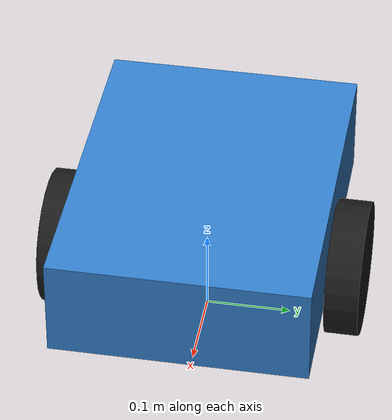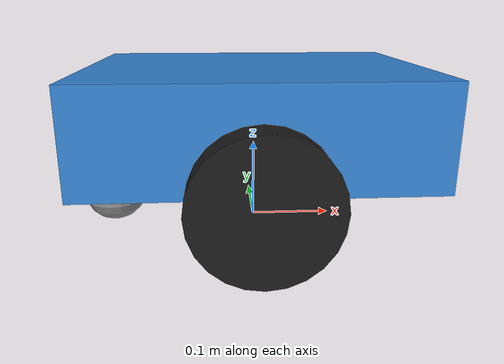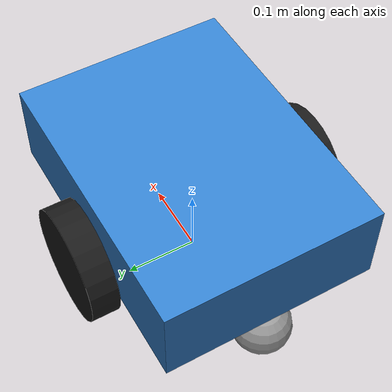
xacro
<?xml version="1.0"?>
<robot xmlns:xacro="http://www.ros.org/wiki/xacro"
       name="mobile_robot">

  <xacro:property name="base_length" value="0.40"/>
  <xacro:property name="base_width" value="0.30"/>
  <xacro:property name="base_height" value="0.12"/>
  <xacro:property name="wheel_radius" value="0.08"/>
  <xacro:property name="wheel_width" value="0.04"/>
  <xacro:property name="geometric_wheel_separation" value="0.34"/>
  <!-- Empirical DiffDrive compensation; does not change physical wheel positions.
       See docs/calibration.md for measurements and limitations. -->
  <xacro:property name="effective_wheel_separation" value="0.304"/>

  <!-- Robot coordinate origin at ground level -->
  <link name="base_footprint"/>

  <joint name="base_footprint_joint" type="fixed">
    <parent link="base_footprint"/>
    <child link="base_link"/>
    <origin xyz="0 0 0.14" rpy="0 0 0"/>
  </joint>

  <!-- Main chassis -->
  <link name="base_link">
    <visual>
      <geometry>
        <box size="${base_length} ${base_width} ${base_height}"/>
      </geometry>
      <material name="blue">
        <color rgba="0.2 0.5 0.8 1"/>
      </material>
    </visual>

    <collision>
      <geometry>
        <box size="${base_length} ${base_width} ${base_height}"/>
      </geometry>
    </collision>

    <inertial>
      <mass value="5.0"/>
      <origin xyz="-0.05 0 0"/>
      <inertia ixx="0.0535" ixy="0" ixz="0"
               iyy="0.0727" iyz="0" izz="0.1042"/>
    </inertial>
  </link>

  <!-- Wheel macro -->
  <xacro:macro name="wheel" params="side y_position">

    <link name="${side}_wheel_link">
      <visual>
        <origin rpy="${pi/2} 0 0"/>
        <geometry>
          <cylinder radius="${wheel_radius}"
                    length="${wheel_width}"/>
        </geometry>
        <material name="black">
          <color rgba="0.1 0.1 0.1 1"/>
        </material>
      </visual>

      <collision>
        <origin rpy="${pi/2} 0 0"/>
        <geometry>
          <cylinder radius="${wheel_radius}"
                    length="${wheel_width}"/>
        </geometry>
      </collision>

      <inertial>
        <mass value="0.5"/>
        <origin xyz="0 0 0"/>
        <inertia ixx="0.001" ixy="0" ixz="0"
                 iyy="0.001" iyz="0" izz="0.001"/>
      </inertial>
    </link>

    <joint name="${side}_wheel_joint" type="continuous">
      <parent link="base_link"/>
      <child link="${side}_wheel_link"/>
      <origin xyz="0 ${y_position} -0.06" rpy="0 0 0"/>
      <axis xyz="0 1 0"/>
    </joint>

  </xacro:macro>

  <xacro:wheel side="left" y_position="${geometric_wheel_separation / 2}"/>
  <xacro:wheel side="right" y_position="${-geometric_wheel_separation / 2}"/>

  <!-- Rear support ball -->
  <link name="caster_link">
    <visual>
      <geometry>
        <sphere radius="0.04"/>
      </geometry>
      <material name="gray">
        <color rgba="0.6 0.6 0.6 1"/>
      </material>
    </visual>

    <collision>
      <geometry>
        <sphere radius="0.04"/>
      </geometry>
    </collision>

    <inertial>
      <mass value="0.1"/>
      <inertia ixx="0.000064" ixy="0" ixz="0"
               iyy="0.000064" iyz="0" izz="0.000064"/>
    </inertial>
  </link>

  <joint name="caster_joint" type="fixed">
    <parent link="base_link"/>
    <child link="caster_link"/>
    <origin xyz="-0.18 0 -0.10"/>
  </joint>

  <!-- Gazebo Harmonic differential drive -->
  <gazebo>
    <plugin
      filename="gz-sim-diff-drive-system"
      name="gz::sim::systems::DiffDrive">

      <left_joint>left_wheel_joint</left_joint>
      <right_joint>right_wheel_joint</right_joint>

      <wheel_separation>${effective_wheel_separation}</wheel_separation>
      <wheel_radius>${wheel_radius}</wheel_radius>

      <!-- Smooth both acceleration and braking before wheel-speed conversion. -->
      <min_linear_acceleration>-0.3</min_linear_acceleration>
      <max_linear_acceleration>0.3</max_linear_acceleration>
      <min_angular_acceleration>-0.8</min_angular_acceleration>
      <max_angular_acceleration>0.8</max_angular_acceleration>

      <topic>/cmd_vel</topic>
      <odom_topic>/odom</odom_topic>

      <frame_id>odom</frame_id>
      <child_frame_id>base_footprint</child_frame_id>

      <odom_publish_frequency>30</odom_publish_frequency>
    </plugin>
  </gazebo>

<gazebo reference="caster_link">
  <mu1>0.001</mu1>
  <mu2>0.001</mu2>
</gazebo>

</robot>
